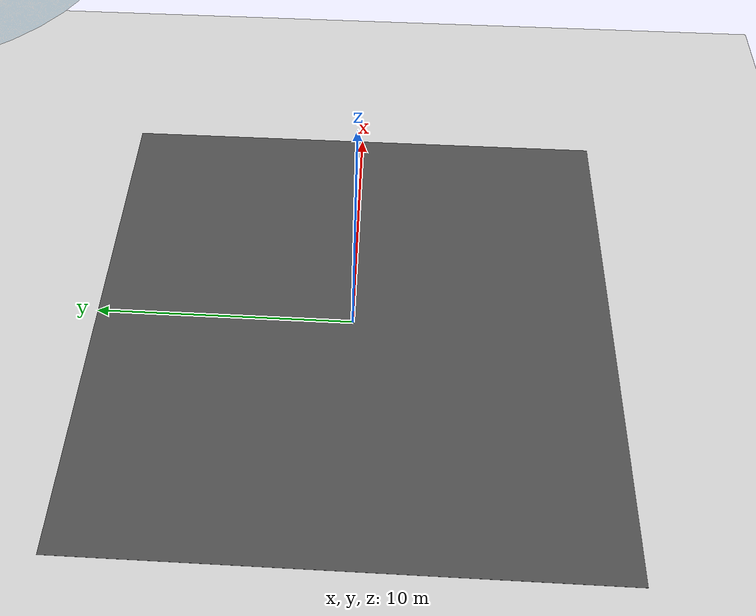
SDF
<sdf version="1.6">
  <world name="default">

    <scene>
      <ambient>0.4 0.4 0.4 1</ambient>
      <background>0.7 0.7 0.7 1</background>
      <shadows>true</shadows>
      <grid>0</grid>

    </scene>

    <gui fullscreen="0">
      <camera name="user_camera">
        <pose>-6.849031 2.898343 4.343055 0 0.39 -0.838002</pose>
        <view_controller>orbit</view_controller>
      </camera>
    </gui>

    <!-- A ground plane -->
    <include>
      <uri>model://ground_plane</uri>
    </include>

    <physics type="ode">
      <real_time_update_rate>1000.0</real_time_update_rate>
      <max_step_size>0.001</max_step_size>
      <real_time_factor>1</real_time_factor>
      <ode>
        <solver>
          <type>quick</type>
          <iters>150</iters>
          <precon_iters>0</precon_iters>
          <sor>1.400000</sor>
          <use_dynamic_moi_rescaling>1</use_dynamic_moi_rescaling>
        </solver>
        <constraints>
          <cfm>0.00001</cfm>
          <erp>0.2</erp>
          <contact_max_correcting_vel>2000.000000</contact_max_correcting_vel>
          <contact_surface_layer>0.01000</contact_surface_layer>
        </constraints>
      </ode>
    </physics>

    <include>
      <uri>model://race_track</uri>
      <name>race_track</name>
      <pose>0 0 -0.01 0 0 0</pose>
    </include>

    <light type="point" name="sunned">
      <pose>0 0 10 0 0 0</pose>
      <diffuse>0.3 0.3 0.3 1</diffuse>
      <specular>1 1 1 1</specular>
      <attenuation>
        <range>20</range>
        <linear>0.01</linear>
        <constant>0.5</constant>
        <quadratic>0.0</quadratic>
      </attenuation>
      <cast_shadows>true</cast_shadows>
    </light>

    <light type="directional" name="main">
      <pose>0 0 8 0 0 0</pose>
      <diffuse>0.5 0.5 0.5 1</diffuse>
      <specular>0 0 0 1</specular>
      <attenuation>
        <range>20</range>
        <linear>0.2</linear>
        <constant>0.8</constant>
        <quadratic>0.01</quadratic>
      </attenuation>
      <cast_shadows>false</cast_shadows>
    </light>

    <light type="point" name="under">
      <pose>0 0 -1 0 0 0</pose>
      <diffuse>1 1 1 1</diffuse>
      <specular>1 1 1 1</specular>
      <attenuation>
        <range>0</range>
        <linear>0</linear>
        <constant>0</constant>
        <quadratic>0</quadratic>
      </attenuation>
      <cast_shadows>false</cast_shadows>
    </light>

  </world>

</sdf>

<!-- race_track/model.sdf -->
<sdf version="1.6">
  <model name="track_making">
    <link name="race_track">
      <!-- ground -->
      <visual name="ground">
        <pose>0 0 0.01 0 0 0</pose>
        <geometry>
          <box>
            <size>20 20 0.01</size>
          </box>
        </geometry>
        <material>
          <script>
            <uri>file://media/materials/scripts/gazebo.material</uri>
            <name>Gazebo/DarkGrey</name>
          </script>
        </material>
      </visual>
      <collision name="ground">
        <pose>0 0 0 0 0 0</pose>
        <geometry>
          <box>
            <size>20 20 0.01</size>
          </box>
        </geometry>
        <max_contacts>10</max_contacts>
        <surface>
          <bounce />
          <friction>
            <ode />
          </friction>
          <contact>
            <ode />
          </contact>
        </surface>
      </collision>

      <!-- Track -->
      <visual name="track">
        <pose>1.2 -4.8 0.02 0 0 0</pose>
        <geometry>
          <mesh>
            <uri>model://race_track/meshes/model.dae</uri>
            <scale>0.078 0.09 0.01</scale>
          </mesh>
        </geometry>
      </visual>
      <collision name="track">
        <pose>0 0 0 0 0 0</pose>
        <geometry>
          <mesh>
            <uri>model://race_track/meshes/model.dae</uri>
            <scale>0.078 0.09 0.01</scale>
          </mesh>
        </geometry>
        <max_contacts>10</max_contacts>
        <surface>
          <bounce />
          <friction>
            <ode />
          </friction>
          <contact>
            <ode />
          </contact>
        </surface>
      </collision>
    </link>
    <static>1</static>
  </model>
</sdf>
